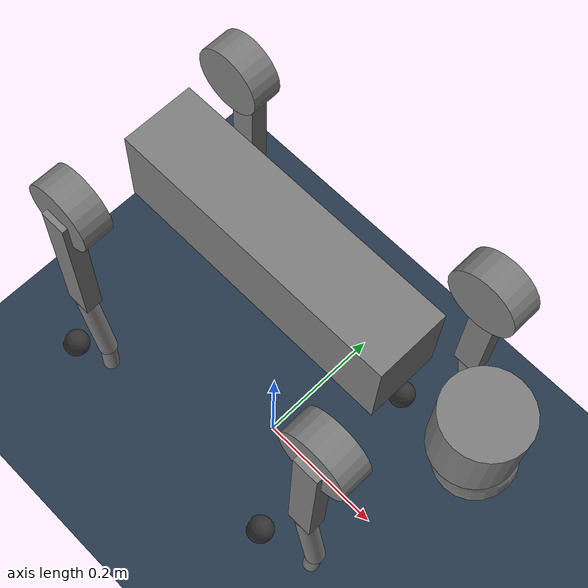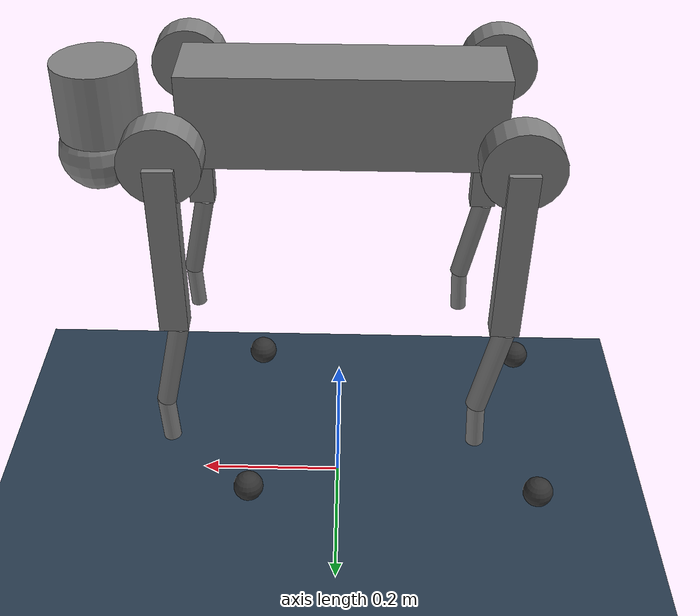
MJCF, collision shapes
<mujoco model="go2">
  <compiler angle="radian" meshdir="../assets" autolimits="true" />
  <!-- match a1/b1: default pyramidal cone, impratio=1. elliptic+impratio=100 caused contact instability -->
  <default>
    <default class="go2">
      <geom friction="0.4" margin="0.001" condim="1" />
      <joint axis="0 1 0" damping="0.1" armature="0.01" frictionloss="0.2" />
      <motor ctrlrange="-23.7 23.7" />
      <default class="abduction">
        <joint axis="1 0 0" range="-1.0472 1.0472" />
      </default>
      <default class="hip">
        <default class="front_hip">
          <joint range="-1.5708 3.4907" />
        </default>
        <default class="back_hip">
          <joint range="-0.5236 4.5379" />
        </default>
      </default>
      <default class="knee">
        <joint range="-2.7227 -0.83776" />
        <motor ctrlrange="-45.43 45.43" />
      </default>
      <default class="visual">
        <geom type="mesh" contype="0" conaffinity="0" group="1" />
      </default>
      <default class="collision">
        <geom group="3" />
        <default class="foot">
          <geom size="0.022" pos="-0.002 0 -0.2264" priority="1" condim="6" friction="0.8 0.02 0.01" />
        </default>
      </default>
    </default>
  </default>
  <asset>
    <material name="metal" rgba=".9 .95 .95 1" />
    <material name="black" rgba="0 0 0 1" />
    <material name="white" rgba="1 1 1 1" />
    <material name="gray" rgba="0.671705 0.692426 0.774270 1" />
    <mesh file="base_0.obj" />
    <mesh file="base_1.obj" />
    <mesh file="base_2.obj" />
    <mesh file="base_3.obj" />
    <mesh file="base_4.obj" />
    <mesh file="hip_0.obj" />
    <mesh file="hip_1.obj" />
    <mesh file="thigh_0.obj" />
    <mesh file="thigh_1.obj" />
    <mesh file="thigh_mirror_0.obj" />
    <mesh file="thigh_mirror_1.obj" />
    <mesh file="calf_mirror_0.obj" />
    <mesh file="calf_mirror_1.obj" />
    <mesh file="calf.stl" />
    <mesh file="calf_mirror.stl" />
    <mesh file="foot.obj" />
    <mesh file="wheel.stl" />
    <texture type="skybox" builtin="gradient" rgb1="0.3 0.5 0.7" rgb2="0 0 0" width="512" height="512" />
    <texture name="texplane" type="2d" builtin="checker" rgb1=".2 .3 .4" rgb2=".1 0.15 0.2" width="512" height="512" mark="cross" markrgb=".8 .8 .8" />
    <material name="matplane" reflectance="0.3" texture="texplane" texrepeat="1 1" texuniform="true" />
  </asset>
  <worldbody>
    <light directional="true" diffuse=".4 .4 .4" specular="0.1 0.1 0.1" pos="0 0 5" dir="0 0 -1" castshadow="false" />
    <light directional="true" diffuse=".6 .6 .6" specular="0.2 0.2 0.2" pos="0 0 4" dir="0 0 -1" />
    <geom name="floor" pos="0 0 0" size="15 15 1" type="plane" material="matplane" margin="0.001" condim="3" friction="1 0.005 0.0001" />
    <body name="trunk" pos="0 0 0.6" childclass="go2">
      <inertial pos="0.021112 0 -0.005366" quat="-0.000543471 0.713435 -0.00173769 0.700719" mass="6.921" diaginertia="0.107027 0.0980771 0.0244531" />
      <freejoint />
      <geom mesh="base_0" material="black" class="visual" />
      <geom mesh="base_1" material="black" class="visual" />
      <geom mesh="base_2" material="black" class="visual" />
      <geom mesh="base_3" material="white" class="visual" />
      <geom mesh="base_4" material="gray" class="visual" />
      <geom size="0.1881 0.04675 0.057" type="box" class="collision" />
      <geom size="0.05 0.045" pos="0.285 0 0.01" type="cylinder" class="collision" />
      <geom size="0.047" pos="0.293 0 -0.06" class="collision" />
      <site name="imu" pos="0 0 0" />
      <body name="FL_hip" pos="0.1934 0.0465 0">
        <inertial pos="-0.0054 0.00194 -0.000105" quat="0.497014 0.499245 0.505462 0.498237" mass="0.678" diaginertia="0.00088403 0.000596003 0.000479967" />
        <joint name="FL_hip_joint" class="abduction" />
        <geom mesh="hip_0" material="metal" class="visual" />
        <geom mesh="hip_1" material="gray" class="visual" />
        <geom size="0.046 0.02" pos="0 0.08 0" quat="1 1 0 0" type="cylinder" class="collision" />
        <body name="FL_thigh" pos="0 0.0955 0">
          <inertial pos="-0.00374 -0.0223 -0.0327" quat="0.829533 0.0847635 -0.0200632 0.551623" mass="1.152" diaginertia="0.00594973 0.00584149 0.000878787" />
          <joint name="FL_thigh_joint" class="front_hip" />
          <geom mesh="thigh_0" material="metal" class="visual" />
          <geom mesh="thigh_1" material="gray" class="visual" />
          <geom size="0.1065 0.01225 0.017" pos="0 0 -0.1065" quat="0.707107 0 0.707107 0" type="box" class="collision" />
          <body name="FL_calf" pos="0 0 -0.213">
            <inertial pos="0.00629595 -0.000622121 -0.141417" quat="0.710672 0.00154099 -0.00450087 0.703508" mass="0.241352" diaginertia="0.0014901 0.00146356 5.31397e-05" />
            <joint name="FL_calf_joint" class="knee" />
            <geom mesh="calf" material="gray" class="visual" />
            <geom size="0.012 0.06" pos="0.008 0 -0.06" quat="0.994493 0 -0.104807 0" type="cylinder" class="collision" />
            <geom size="0.011 0.0325" pos="0.02 0 -0.148" quat="0.999688 0 0.0249974 0" type="cylinder" class="collision" />
            <body name="FL_wheel_link" pos="0 0 -0.2264">
              <inertial pos="-0.0 0.04 -0.0" quat="0.661419 0.248219 0.250051 0.662108" mass="0.98" diaginertia="0.003 0.0016 0.0016" />
              <geom type="mesh" rgba="0.15 0.15 0.15 1" mesh="wheel" pos="0 0.0 0" quat="0.0 1.0 0.0 0.0" contype="0" conaffinity="0" group="1" />
              <geom name="LF_FOOT_geom" type="sphere" size="0.02" pos="-0.0748 0 -0.0480" condim="3" priority="1" friction="0.8 0.02 0.01" rgba="0.2 0.2 0.2 1"  group="3"/>
            </body>
          </body>
        </body>
      </body>
      <body name="FR_hip" pos="0.1934 -0.0465 0">
        <inertial pos="-0.0054 -0.00194 -0.000105" quat="0.498237 0.505462 0.499245 0.497014" mass="0.678" diaginertia="0.00088403 0.000596003 0.000479967" />
        <joint name="FR_hip_joint" class="abduction" />
        <geom mesh="hip_0" material="metal" class="visual" quat="4.63268e-05 1 0 0" />
        <geom mesh="hip_1" material="gray" class="visual" quat="4.63268e-05 1 0 0" />
        <geom size="0.046 0.02" pos="0 -0.08 0" quat="0.707107 0.707107 0 0" type="cylinder" class="collision" />
        <body name="FR_thigh" pos="0 -0.0955 0">
          <inertial pos="-0.00374 0.0223 -0.0327" quat="0.551623 -0.0200632 0.0847635 0.829533" mass="1.152" diaginertia="0.00594973 0.00584149 0.000878787" />
          <joint name="FR_thigh_joint" class="front_hip" />
          <geom mesh="thigh_mirror_0" material="metal" class="visual" />
          <geom mesh="thigh_mirror_1" material="gray" class="visual" />
          <geom size="0.1065 0.01225 0.017" pos="0 0 -0.1065" quat="0.707107 0 0.707107 0" type="box" class="collision" />
          <body name="FR_calf" pos="0 0 -0.213">
            <inertial pos="0.00629595 0.000622121 -0.141417" quat="0.703508 -0.00450087 0.00154099 0.710672" mass="0.241352" diaginertia="0.0014901 0.00146356 5.31397e-05" />
            <joint name="FR_calf_joint" class="knee" />
            <geom mesh="calf_mirror" material="gray" class="visual" />
            <geom size="0.013 0.06" pos="0.01 0 -0.06" quat="0.995004 0 -0.0998334 0" type="cylinder" class="collision" />
            <geom size="0.011 0.0325" pos="0.02 0 -0.148" quat="0.999688 0 0.0249974 0" type="cylinder" class="collision" />
            <body name="FR_wheel_link" pos="0 0 -0.2264">
              <inertial pos="-0.0 -0.04 -0.0" quat="0.661419 0.248219 0.250051 0.662108" mass="0.98" diaginertia="0.003 0.0016 0.0016" />
              <geom type="mesh" rgba="0.15 0.15 0.15 1" mesh="wheel" pos="0 -0.0 0" contype="0" conaffinity="0" group="1" />
              <geom name="RF_FOOT_geom" type="sphere" size="0.02" pos="-0.0748 0 -0.0480" condim="3" priority="1" friction="0.8 0.02 0.01" rgba="0.2 0.2 0.2 1"  group="3"/>
            </body>
          </body>
        </body>
      </body>
      <body name="RL_hip" pos="-0.1934 0.0465 0">
        <inertial pos="0.0054 0.00194 -0.000105" quat="0.505462 0.498237 0.497014 0.499245" mass="0.678" diaginertia="0.00088403 0.000596003 0.000479967" />
        <joint name="RL_hip_joint" class="abduction" />
        <geom mesh="hip_0" material="metal" class="visual" quat="4.63268e-05 0 1 0" />
        <geom mesh="hip_1" material="gray" class="visual" quat="4.63268e-05 0 1 0" />
        <geom size="0.046 0.02" pos="0 0.08 0" quat="0.707107 0.707107 0 0" type="cylinder" class="collision" />
        <body name="RL_thigh" pos="0 0.0955 0">
          <inertial pos="-0.00374 -0.0223 -0.0327" quat="0.829533 0.0847635 -0.0200632 0.551623" mass="1.152" diaginertia="0.00594973 0.00584149 0.000878787" />
          <joint name="RL_thigh_joint" class="back_hip" />
          <geom mesh="thigh_0" material="metal" class="visual" />
          <geom mesh="thigh_1" material="gray" class="visual" />
          <geom size="0.1065 0.01225 0.017" pos="0 0 -0.1065" quat="0.707107 0 0.707107 0" type="box" class="collision" />
          <body name="RL_calf" pos="0 0 -0.213">
            <inertial pos="0.00629595 -0.000622121 -0.141417" quat="0.710672 0.00154099 -0.00450087 0.703508" mass="0.241352" diaginertia="0.0014901 0.00146356 5.31397e-05" />
            <joint name="RL_calf_joint" class="knee" />
            <geom mesh="calf" material="gray" class="visual" />
            <geom size="0.013 0.06" pos="0.01 0 -0.06" quat="0.995004 0 -0.0998334 0" type="cylinder" class="collision" />
            <geom size="0.011 0.0325" pos="0.02 0 -0.148" quat="0.999688 0 0.0249974 0" type="cylinder" class="collision" />
            <body name="RL_wheel_link" pos="0 0 -0.2264">
              <inertial pos="-0.0 0.04 -0.0" quat="0.661419 0.248219 0.250051 0.662108" mass="0.98" diaginertia="0.003 0.0016 0.0016" />
              <geom type="mesh" rgba="0.15 0.15 0.15 1" mesh="wheel" pos="0 0.0 0" quat="0.0 1.0 0.0 0.0" contype="0" conaffinity="0" group="1" />
              <geom name="LH_FOOT_geom" type="sphere" size="0.02" pos="-0.0748 0 -0.0480" condim="3" priority="1" friction="0.8 0.02 0.01" rgba="0.2 0.2 0.2 1"  group="3"/>
            </body>
          </body>
        </body>
      </body>
      <body name="RR_hip" pos="-0.1934 -0.0465 0">
        <inertial pos="0.0054 -0.00194 -0.000105" quat="0.499245 0.497014 0.498237 0.505462" mass="0.678" diaginertia="0.00088403 0.000596003 0.000479967" />
        <joint name="RR_hip_joint" class="abduction" />
        <geom mesh="hip_0" material="metal" class="visual" quat="2.14617e-09 4.63268e-05 4.63268e-05 -1" />
        <geom mesh="hip_1" material="gray" class="visual" quat="2.14617e-09 4.63268e-05 4.63268e-05 -1" />
        <geom size="0.046 0.02" pos="0 -0.08 0" quat="0.707107 0.707107 0 0" type="cylinder" class="collision" />
        <body name="RR_thigh" pos="0 -0.0955 0">
          <inertial pos="-0.00374 0.0223 -0.0327" quat="0.551623 -0.0200632 0.0847635 0.829533" mass="1.152" diaginertia="0.00594973 0.00584149 0.000878787" />
          <joint name="RR_thigh_joint" class="back_hip" />
          <geom mesh="thigh_mirror_0" material="metal" class="visual" />
          <geom mesh="thigh_mirror_1" material="gray" class="visual" />
          <geom size="0.1065 0.01225 0.017" pos="0 0 -0.1065" quat="0.707107 0 0.707107 0" type="box" class="collision" />
          <body name="RR_calf" pos="0 0 -0.213">
            <inertial pos="0.00629595 0.000622121 -0.141417" quat="0.703508 -0.00450087 0.00154099 0.710672" mass="0.241352" diaginertia="0.0014901 0.00146356 5.31397e-05" />
            <joint name="RR_calf_joint" class="knee" />
            <geom mesh="calf_mirror" material="gray" class="visual" />
            <geom size="0.013 0.06" pos="0.01 0 -0.06" quat="0.995004 0 -0.0998334 0" type="cylinder" class="collision" />
            <geom size="0.011 0.0325" pos="0.02 0 -0.148" quat="0.999688 0 0.0249974 0" type="cylinder" class="collision" />
            <body name="RR_wheel_link" pos="0 0 -0.2264">
              <inertial pos="-0.0 -0.04 -0.0" quat="0.661419 0.248219 0.250051 0.662108" mass="0.98" diaginertia="0.003 0.0016 0.0016" />
              <geom type="mesh" rgba="0.15 0.15 0.15 1" mesh="wheel" pos="0 -0.00 0" contype="0" conaffinity="0" group="1" />
              <geom name="RH_FOOT_geom" type="sphere" size="0.02" pos="-0.0748 0 -0.0480" condim="3" priority="1" friction="0.8 0.02 0.01" rgba="0.2 0.2 0.2 1"  group="3"/>
            </body>
          </body>
        </body>
      </body>
    </body>
  </worldbody>
  <actuator>
    <motor class="abduction" name="FL_hip" joint="FL_hip_joint" />
    <motor class="hip" name="FL_thigh" joint="FL_thigh_joint" />
    <motor class="knee" name="FL_calf" joint="FL_calf_joint" />
    <motor class="abduction" name="RL_hip" joint="RL_hip_joint" />
    <motor class="hip" name="RL_thigh" joint="RL_thigh_joint" />
    <motor class="knee" name="RL_calf" joint="RL_calf_joint" />
    <motor class="abduction" name="FR_hip" joint="FR_hip_joint" />
    <motor class="hip" name="FR_thigh" joint="FR_thigh_joint" />
    <motor class="knee" name="FR_calf" joint="FR_calf_joint" />
    <motor class="abduction" name="RR_hip" joint="RR_hip_joint" />
    <motor class="hip" name="RR_thigh" joint="RR_thigh_joint" />
    <motor class="knee" name="RR_calf" joint="RR_calf_joint" />
  </actuator>
  <sensor>
    <framequat name="imu_quat" objtype="site" objname="imu" />
    <gyro name="imu_angvel" site="imu" />
    <accelerometer name="imu_linacc" site="imu" />
    <jointpos joint="FL_hip_joint" />
    <jointpos joint="FL_thigh_joint" />
    <jointpos joint="FL_calf_joint" />
    <jointpos joint="RL_hip_joint" />
    <jointpos joint="RL_thigh_joint" />
    <jointpos joint="RL_calf_joint" />
    <jointpos joint="FR_hip_joint" />
    <jointpos joint="FR_thigh_joint" />
    <jointpos joint="FR_calf_joint" />
    <jointpos joint="RR_hip_joint" />
    <jointpos joint="RR_thigh_joint" />
    <jointpos joint="RR_calf_joint" />
    <jointvel joint="FL_hip_joint" />
    <jointvel joint="FL_thigh_joint" />
    <jointvel joint="FL_calf_joint" />
    <jointvel joint="RL_hip_joint" />
    <jointvel joint="RL_thigh_joint" />
    <jointvel joint="RL_calf_joint" />
    <jointvel joint="FR_hip_joint" />
    <jointvel joint="FR_thigh_joint" />
    <jointvel joint="FR_calf_joint" />
    <jointvel joint="RR_hip_joint" />
    <jointvel joint="RR_thigh_joint" />
    <jointvel joint="RR_calf_joint" />
    <framequat name="base_quat" objtype="site" objname="imu" />
    <framepos name="base_pose" objtype="site" objname="imu" />
    <frameangvel name="base_angvel" objtype="site" objname="imu" />
    <framelinvel name="base_linvel" objtype="site" objname="imu" />
  </sensor>
  <keyframe>
    <key name="home" qpos="0 0 0.349 1 0 0 0  0 1.0 -2.0  0 1.0 -2.0  0 1.0 -2.0  0 1.0 -2.0" />
  </keyframe>
</mujoco>
